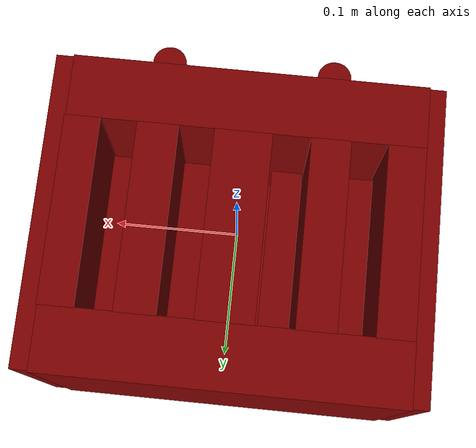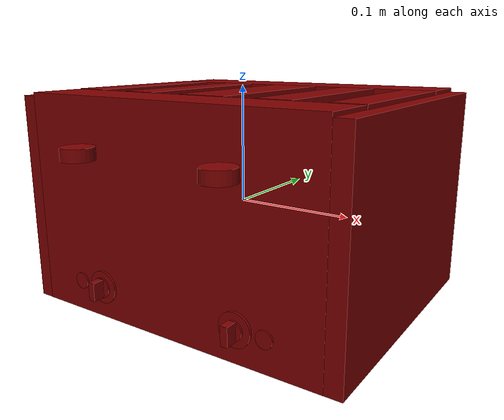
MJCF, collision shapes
<?xml version='1.0' encoding='UTF-8'?>
<mujoco model="model">
  <option timestep="0.002" gravity="0.0 0.0 -9.81"/>
  <compiler angle="radian"/>
  <asset>
    <mesh file="visuals/sideL_button_cancel.obj" name="sideL_button_cancel_vis"/>
    <mesh file="visuals/sideL_knob_doneness.obj" name="sideL_knob_doneness_vis"/>
    <mesh file="visuals/sideL_lever.obj" name="sideL_lever_vis"/>
    <mesh file="visuals/sideR_button_cancel.obj" name="sideR_button_cancel_vis"/>
    <mesh file="visuals/sideR_knob_doneness.obj" name="sideR_knob_doneness_vis"/>
    <mesh file="visuals/sideR_lever.obj" name="sideR_lever_vis"/>
    <mesh file="visuals/Body001.obj" name="Body001_vis"/>
    <texture file="visuals/T_BC001.png" name="Body001_material" type="2d"/>
    <material name="Body001_material" rgba="1 1 1 1.0" texture="Body001_material" shininess="0.1" specular="5"/>
    <texture file="visuals/T_BC001.png" name="sideL_button_cancel_material" type="2d"/>
    <material name="sideL_button_cancel_material" rgba="1 1 1 1.0" texture="sideL_button_cancel_material" shininess="0.1" specular="5"/>
    <texture file="visuals/T_BC001.png" name="sideL_knob_doneness_material" type="2d"/>
    <material name="sideL_knob_doneness_material" rgba="1 1 1 1.0" texture="sideL_knob_doneness_material" shininess="0.1" specular="5"/>
    <texture file="visuals/T_BC001.png" name="sideL_lever_material" type="2d"/>
    <material name="sideL_lever_material" rgba="1 1 1 1.0" texture="sideL_lever_material" shininess="0.1" specular="5"/>
    <texture file="visuals/T_BC001.png" name="sideR_button_cancel_material" type="2d"/>
    <material name="sideR_button_cancel_material" rgba="1 1 1 1.0" texture="sideR_button_cancel_material" shininess="0.1" specular="5"/>
    <texture file="visuals/T_BC001.png" name="sideR_knob_doneness_material" type="2d"/>
    <material name="sideR_knob_doneness_material" rgba="1 1 1 1.0" texture="sideR_knob_doneness_material" shininess="0.1" specular="5"/>
    <texture file="visuals/T_BC001.png" name="sideR_lever_material" type="2d"/>
    <material name="sideR_lever_material" rgba="1 1 1 1.0" texture="sideR_lever_material" shininess="0.1" specular="5"/>
  </asset>
  <default>
    <default class="visual">
      <geom conaffinity="0" contype="0" group="1" type="mesh"/>
    </default>
    <default class="collision_1">
      <geom group="0" rgba="0.5 0 0 0.5" solref="0.004 1" solimp="0.998 0.998 0.001"/>
    </default>
    <default class="collision_2">
      <geom group="0" rgba="0.5 0 0 0.5" solref="0.004 1" solimp="0.998 0.998 0.001"/>
    </default>
    <default class="collision_3">
      <geom group="0" rgba="0.5 0 0 0.5" solref="0.004 1" solimp="0.998 0.998 0.001"/>
    </default>
    <default class="collision_4">
      <geom group="0" rgba="0.5 0 0 0.5" solref="0.004 1" solimp="0.998 0.998 0.001"/>
    </default>
    <default class="collision_5">
      <geom group="0" rgba="0.5 0 0 0.5" solref="0.004 1" solimp="0.998 0.998 0.001"/>
    </default>
    <default class="collision_6">
      <geom group="0" rgba="0.5 0 0 0.5" solref="0.004 1" solimp="0.998 0.998 0.001"/>
    </default>
    <default class="collision_7">
      <geom group="0" rgba="0.5 0 0 0.5" solref="0.004 1" solimp="0.998 0.998 0.001"/>
    </default>
    <default class="spawn">
      <geom group="0" rgba="1 1 1 0.5" contype="0" conaffinity="0"/>
      <site group="0" rgba="1 1 1 0.5"/>
    </default>
    <default class="region">
      <geom group="1" conaffinity="0" contype="0" rgba="0 1 0 0" mass="0"/>
    </default>
  </default>
  <worldbody>
    <body>
      <body name="object">
        <geom mesh="Body001_vis" type="mesh" solimp="0.998 0.998 0.001" solref="0.001 1" friction="0.95 0.3 0.1" class="visual" material="Body001_material"/>
        <geom type="box" pos="-0.14308192 0.01461423 0.00214603" size="0.007002524100244045 0.12076738476753235 0.08983761817216873" quat="1.0 0.0 0.0 0.0" class="collision_1"/>
        <geom type="box" pos="0.14243780 0.01461423 0.00214603" size="0.007543185260146856 0.12076738476753235 0.08983761817216873" quat="1.0 0.0 0.0 0.0" class="collision_1"/>
        <geom type="box" pos="-0.00065598 0.11208643 0.00387040" size="0.136514812707901 0.024617714807391167 0.09156198799610138" quat="1.0 0.0 0.0 0.0" class="collision_1"/>
        <geom type="box" pos="-0.00065598 -0.08189060 0.00371911" size="0.136514812707901 0.024375740438699722 0.09141069650650024" quat="1.0 0.0 0.0 0.0" class="collision_1"/>
        <geom type="box" pos="0.06544784 0.01512668 0.02789093" size="0.015857499092817307 0.07274053245782852 0.06769318878650665" quat="1.0 0.0 0.0 0.0" class="collision_1"/>
        <geom type="box" pos="-0.00065598 0.01253526 -0.06409769" size="0.136514812707901 0.07725905627012253 0.024705462157726288" quat="1.0 0.0 0.0 0.0" class="collision_1"/>
        <geom type="cylinder" pos="-0.13135807 -0.08288622 -0.09169935" size="0.004908865783363581 0.0035600834526121616" quat="1.0 0.0 0.0 0.0" class="collision_1"/>
        <geom type="cylinder" pos="0.13135810 -0.08288622 -0.09169935" size="0.004908865783363581 0.003560083918273449" quat="1.0 0.0 0.0 0.0" class="collision_1"/>
        <geom type="cylinder" pos="-0.13135807 0.11745070 -0.09169935" size="0.004908866249024868 0.003560083918273449" quat="1.0 0.0 0.0 0.0" class="collision_1"/>
        <geom type="cylinder" pos="0.13135816 0.11745070 -0.09169935" size="0.004908865783363581 0.0035600841511040926" quat="1.0 0.0 0.0 0.0" class="collision_1"/>
        <geom type="cylinder" pos="-0.06638671 -0.10512151 -0.06058981" size="0.01390498410910368 0.0029327014926820993" quat="0.707091748714447 -0.707118809223175 -0.0011263004271313548 0.0017355249729007483" class="collision_1"/>
        <geom type="cylinder" pos="0.06638677 -0.10556063 -0.06058982" size="0.013726185075938702 0.0026077711954712868" quat="0.7071068286895752 -0.7071067690849304 -1.5700925641616852e-16 1.528541539483468e-23" class="collision_1"/>
        <geom type="box" pos="0.12285087 0.01512668 0.02789092" size="0.01379296462982893 0.07274053245782852 0.06769353151321411" quat="1.0 0.0 0.0 0.0" class="collision_1"/>
        <geom type="box" pos="-0.06553240 0.01512668 0.02789092" size="0.015086033381521702 0.07274053245782852 0.06769358366727829" quat="1.0 0.0 0.0 0.0" class="collision_1"/>
        <geom type="box" pos="-0.12259769 0.01512668 0.02789092" size="0.014300225302577019 0.07274053245782852 0.06769364327192307" quat="1.0 0.0 0.0 0.0" class="collision_1"/>
        <geom type="box" pos="0.00054428 0.01512668 0.02789092" size="0.021993929520249367 0.07274053245782852 0.06769370287656784" quat="1.0 0.0 0.0 0.0" class="collision_1"/>
        <body name="sideL_button_cancel">
          <joint axis="0.0 1.0 0.0" pos="-0.09119758 -0.10725999 -0.06078312" limited="true" name="sideL_button_cancel_joint" range="0.0 0.002" type="slide" damping="1" frictionloss="1" armature=".01" stiffness="4" springref="-1"/>
          <geom mesh="sideL_button_cancel_vis" type="mesh" solimp="0.998 0.998 0.001" solref="0.001 1" friction="0.95 0.3 0.1" class="visual" material="sideL_button_cancel_material"/>
          <geom class="collision_2" type="cylinder" pos="-0.09150732 -0.10779722 -0.06050341" size="0.007050203159451485 0.0006969086243771017" quat="0.7071068286895752 -0.7071067690849304 -1.5700925641616852e-16 1.528541539483468e-23" name="sideL_button_cancel_main"/>
        </body>
        <body name="sideL_knob_doneness">
          <joint axis="0.0 1.0 0.0" pos="-0.06645847 -0.11417513 -0.06077128" limited="true" name="sideL_knob_doneness_joint" range="0.0 5.235987755982989" type="hinge" damping="0.05" armature="1" frictionloss="0.75"/>
          <geom mesh="sideL_knob_doneness_vis" type="mesh" solimp="0.998 0.998 0.001" solref="0.001 1" friction="0.95 0.3 0.1" class="visual" material="sideL_knob_doneness_material"/>
          <geom type="cylinder" pos="-0.06638671 -0.10929388 -0.06058981" size="0.00874386914074421 0.0006149651599116623" quat="0.7071068286895752 -0.7071067690849304 -1.5700925641616852e-16 1.528541539483468e-23" class="collision_3" friction="100 0.5 0.01"/>
          <geom class="collision_3" type="box" pos="-0.06646793 -0.11498571 -0.06058405" size="0.00301748001947999 0.004999999888241291 0.007700514513999224" quat="1.0 0.0 0.0 0.0" name="sideL_knob_doneness_main" friction="100 0.5 0.01"/>
        </body>
        <body name="sideL_lever">
          <joint axis="0.0 0.0 -1.0" pos="-0.06655303 -0.11836352 0.05272904" limited="true" name="sideL_lever_joint" range="0.0 0.057999999999999996" type="slide" damping="1" frictionloss="1" armature=".1" stiffness="2.8" springref="-0.5"/>
          <geom class="region" name="reg_sideL_slotL" type="box" pos="-0.093948565 0.014639835000000004 0.09543621999999999" size="0.013602525000000004 0.071924445 0.07600007"/>
          <geom class="region" name="reg_sideL_slotR" type="box" pos="-0.036084705 0.014639835000000004 0.09543621999999999" size="0.014329664999999998 0.071924445 0.07600007"/>
          <geom mesh="sideL_lever_vis" type="mesh" solimp="0.998 0.998 0.001" solref="0.001 1" friction="0.95 0.3 0.1" class="visual" material="sideL_lever_material"/>
          <geom class="collision_4" type="box" pos="-0.09495582 0.01532005 0.01971659" size="0.012499838136136532 0.06762415915727615 0.0006059790030121803" quat="1.0 0.0 0.0 0.0" name="sideL_slotL_floor"/>
          <geom class="collision_4" type="box" pos="-0.03646965 0.01532005 0.01971659" size="0.01249999925494194 0.06762491166591644 0.000606010144110769" quat="1.0 0.0 0.0 0.0" name="sideL_slotR_floor"/>
          <geom class="collision_4" type="cylinder" pos="-0.06664670 -0.12293896 0.05336723" size="0.013417379930615425 0.005154154263436794" quat="1.0 0.0 0.0 0.0" name="sideL_lever_handle"/>
        </body>
        <body name="sideR_button_cancel">
          <joint axis="0.0 1.0 0.0" pos="0.09119764 -0.10725989 -0.06078311" limited="true" name="sideR_button_cancel_joint" range="0.0 0.002" type="slide" damping="1" frictionloss="1" armature=".01" stiffness="4" springref="-1"/>
          <geom mesh="sideR_button_cancel_vis" type="mesh" solimp="0.998 0.998 0.001" solref="0.001 1" friction="0.95 0.3 0.1" class="visual" material="sideR_button_cancel_material"/>
          <geom class="collision_5" type="cylinder" pos="0.09129781 -0.10768030 -0.06050341" size="0.007050203159451485 0.0007267853361554444" quat="0.7071068286895752 -0.7071067690849304 -1.5700925641616852e-16 1.528541539483468e-23" name="sideR_button_cancel_main"/>
        </body>
        <body name="sideR_knob_doneness">
          <joint axis="0.0 1.0 0.0" pos="0.06657732 -0.11417508 -0.06077128" limited="true" name="sideR_knob_doneness_joint" range="0.0 5.235987755982989" type="hinge" damping="0.05" armature="1" frictionloss="0.75"/>
          <geom mesh="sideR_knob_doneness_vis" type="mesh" solimp="0.998 0.998 0.001" solref="0.001 1" friction="0.95 0.3 0.1" class="visual" material="sideR_knob_doneness_material"/>
          <geom type="cylinder" pos="0.06638677 -0.10912960 -0.06058982" size="0.007749210577458143 0.0007127979770302773" quat="0.7071068286895752 -0.7071067690849304 -1.5700925641616852e-16 1.528541539483468e-23" class="collision_6" friction="100 0.5 0.01"/>
          <geom class="collision_6" type="box" pos="0.06630151 -0.11498571 -0.06058405" size="0.00301748001947999 0.004999999888241291 0.007700514513999224" quat="1.0 0.0 0.0 0.0" name="sideR_knob_doneness_main" friction="100 0.5 0.01"/>
        </body>
        <body name="sideR_lever">
          <joint axis="0.0 0.0 -1.0" pos="0.06655310 -0.11836352 0.05272904" limited="true" name="sideR_lever_joint" range="0.0 0.057999999999999996" type="slide" damping="1" frictionloss="1" armature=".1" stiffness="2.8" springref="-0.5"/>
          <geom class="region" name="reg_sideR_slotL" type="box" pos="0.035848755 0.014639835000000004 0.09543621999999999" size="0.013211635 0.071924445 0.07600007"/>
          <geom class="region" name="reg_sideR_slotR" type="box" pos="0.09552798500000001 0.014639835000000004 0.09543621999999999" size="0.013700965000000002 0.071924445 0.07600007"/>
          <geom mesh="sideR_lever_vis" type="mesh" solimp="0.998 0.998 0.001" solref="0.001 1" friction="0.95 0.3 0.1" class="visual" material="sideR_lever_material"/>
          <geom class="collision_7" type="box" pos="0.09495588 0.01532004 0.01971659" size="0.012499869801104069 0.06762433052062988 0.0006059954175725579" quat="1.0 0.0 0.0 0.0" name="sideR_slotR_floor"/>
          <geom class="collision_7" type="box" pos="0.03620444 0.01532004 0.01971659" size="0.01249993871897459 0.06762493401765823 0.0006059955921955407" quat="1.0 0.0 0.0 0.0" name="sideR_slotL_floor"/>
          <geom class="collision_7" type="cylinder" pos="0.06655293 -0.12293896 0.05336723" size="0.013417379930615425 0.005154154263436794" quat="1.0 0.0 0.0 0.0" name="sideR_lever_handle"/>
        </body>
        <geom class="region" name="reg_main" type="box" pos="0.0 0.014196845 0.0" size="0.15060839 0.122743325 0.0964363"/>
      </body>
    </body>
  </worldbody>
  <actuator>
    <motor name="sideL_button_cancel_joint_actuator" joint="sideL_button_cancel_joint" gear="0.5"/>
    <motor name="sideL_knob_doneness_joint_actuator" joint="sideL_knob_doneness_joint" gear="0.5"/>
    <motor name="sideL_lever_joint_actuator" joint="sideL_lever_joint" gear="0.5"/>
    <motor name="sideR_button_cancel_joint_actuator" joint="sideR_button_cancel_joint" gear="0.5"/>
    <motor name="sideR_knob_doneness_joint_actuator" joint="sideR_knob_doneness_joint" gear="0.5"/>
    <motor name="sideR_lever_joint_actuator" joint="sideR_lever_joint" gear="0.5"/>
  </actuator>
</mujoco>
